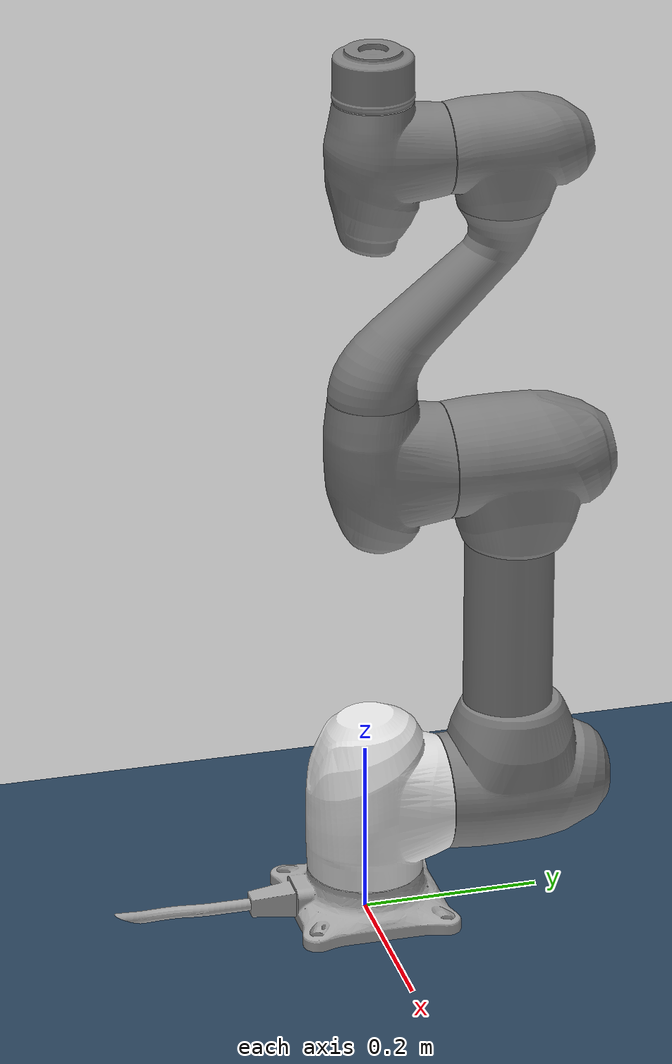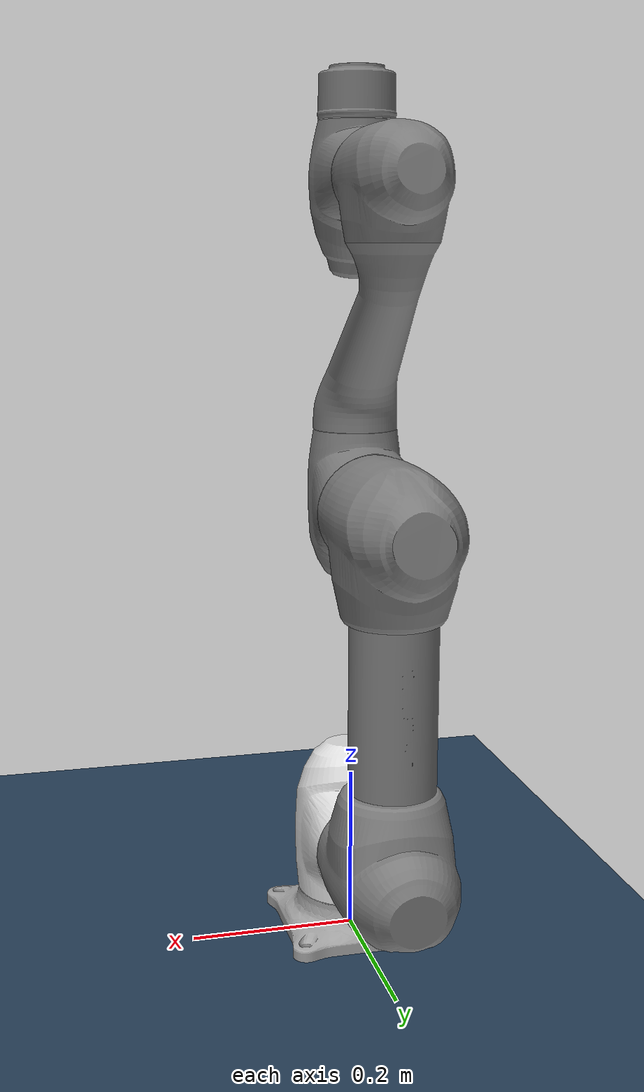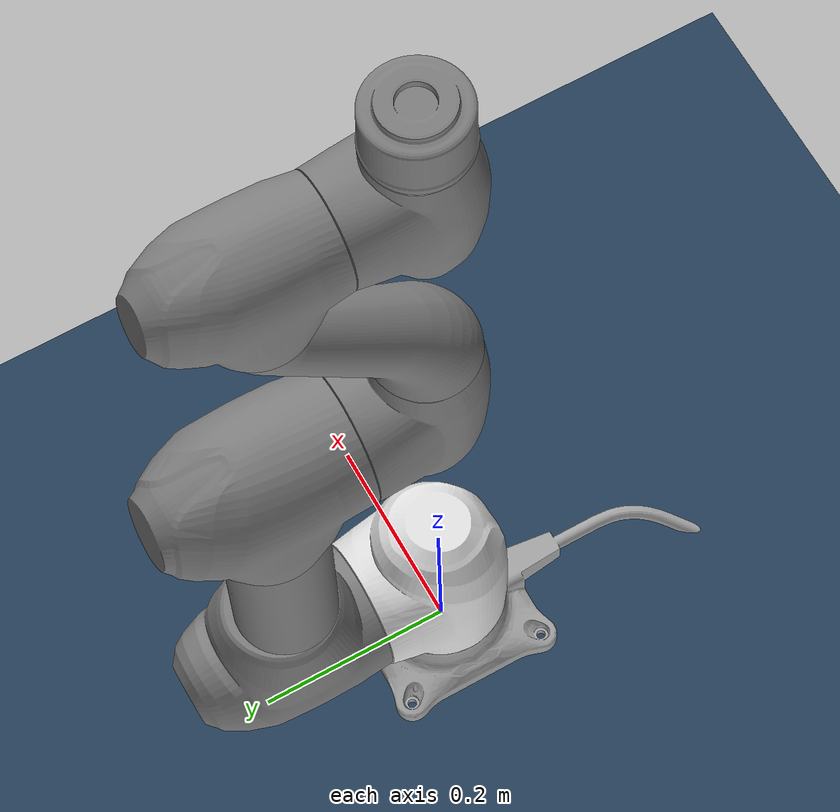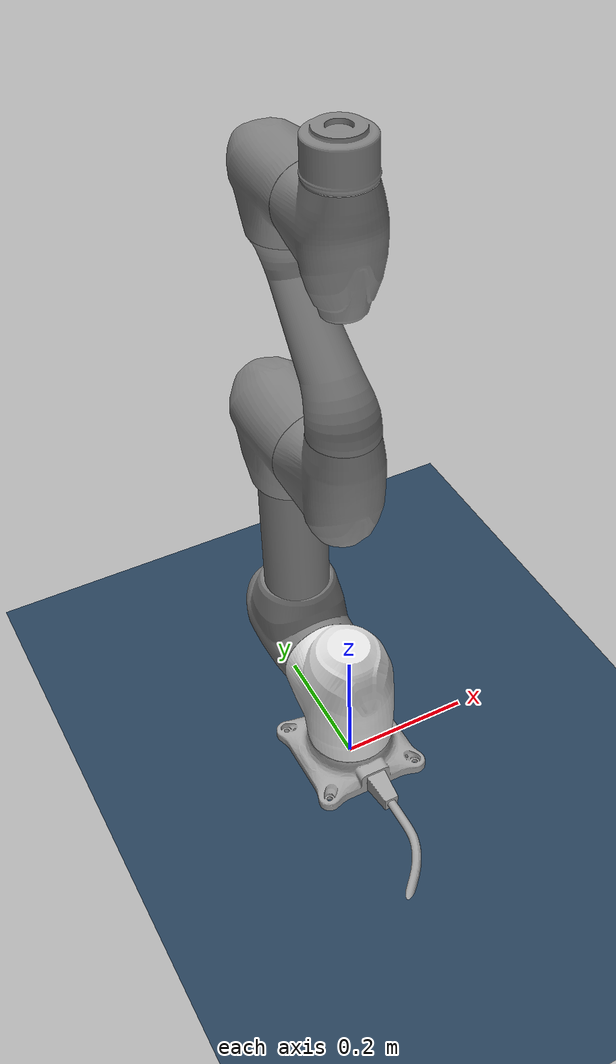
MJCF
<mujoco model="m0609 scene">
  <compiler angle="radian" meshdir="../"/>
  <include file="m0609.xml"/>

  <statistic center="0.3 0 0.4" extent="1"/>

  <visual>
    <headlight diffuse="0.6 0.6 0.6" ambient="0.3 0.3 0.3" specular="0 0 0"/>
    <rgba haze="0.15 0.25 0.35 1"/>
    <global azimuth="120" elevation="-20"/>
  </visual>

  <asset>
    <texture type="skybox" builtin="gradient" rgb1="0.3 0.5 0.7" rgb2="0 0 0" width="512" height="3072"/>
    <texture type="2d" name="groundplane" builtin="checker" mark="edge" rgb1="0.2 0.3 0.4" rgb2="0.1 0.2 0.3"
      markrgb="0.8 0.8 0.8" width="300" height="300"/>
    <material name="groundplane" texture="groundplane" texuniform="true" texrepeat="5 5" reflectance="0.2"/>
  </asset>

  <worldbody>
    <light pos="0 0 1.5" dir="0 0 -1" directional="true"/>
    <geom name="floor" size="0 0 0.05" type="plane" material="groundplane"/>
  </worldbody>
</mujoco>

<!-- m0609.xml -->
<mujoco model="m0609">

  <asset>
    <mesh name="MF0609_0_0" file="m0609/assets/MF0609_0_0.stl" scale="0.001 0.001 0.001"/>
    <mesh name="MF0609_1_0" file="m0609/assets/MF0609_1_0.stl" scale="0.001 0.001 0.001"/>
    <mesh name="MF0609_2_0" file="m0609/assets/MF0609_2_0.stl" scale="0.001 0.001 0.001"/>
    <mesh name="MF0609_2_1" file="m0609/assets/MF0609_2_1.stl" scale="0.001 0.001 0.001"/>
    <mesh name="MF0609_2_2" file="m0609/assets/MF0609_2_2.stl" scale="0.001 0.001 0.001"/>
    <mesh name="MF0609_3_0" file="m0609/assets/MF0609_3_0.stl" scale="0.001 0.001 0.001"/>
    <mesh name="MF0609_4_0" file="m0609/assets/MF0609_4_0.stl" scale="0.001 0.001 0.001"/>
    <mesh name="MF0609_4_1" file="m0609/assets/MF0609_4_1.stl" scale="0.001 0.001 0.001"/>
    <mesh name="MF0609_5_0" file="m0609/assets/MF0609_5_0.stl" scale="0.001 0.001 0.001"/>
    <mesh name="MF0609_6_0" file="m0609/assets/MF0609_6_0.stl" scale="0.001 0.001 0.001"/>

    <material name="white" rgba="0.9 0.9 0.9 1"/>
    <material name="metal" rgba="0.65 0.65 0.65 1"/>
  </asset>

  <worldbody>
    <geom type="mesh" contype="0" conaffinity="0" group="1" density="0" mesh="MF0609_0_0" material="metal"/>
    <body name="link_1" pos="0 0 0.1345">
      <inertial pos="7.2e-05 0.036227 -0.003417" quat="0.664592 0.747202 0.00267558 -0.000797025" mass="5.02" diaginertia="0.0261951 0.0230285 0.0168144"/>
      <joint name="joint_1" pos="0 0 0" axis="0 0 1" range="-6.2832 6.2832" actuatorfrcrange="-400 400" damping="400" frictionloss="1"/>
      <geom type="mesh" contype="0" conaffinity="0" group="1" density="0" mesh="MF0609_1_0" material="white"/>
      <body name="link_2" pos="0 0.0062 0" quat="0.499898 -0.500102 -0.5 -0.5">
        <inertial pos="0.20447 2.6e-05 0.16005" quat="0.501219 0.498426 0.500493 0.499858" mass="8.04" diaginertia="0.30084 0.298981 0.0267416"/>
        <joint name="joint_2" pos="0 0 0" axis="0 0 1" range="-6.2832 6.2832" actuatorfrcrange="-300 300" damping="400" frictionloss="1"/>
        <geom type="mesh" mesh="MF0609_2_0"/>
        <geom type="mesh" contype="0" conaffinity="0" group="1" density="0" mesh="MF0609_2_0" material="white"/>
        <geom type="mesh" mesh="MF0609_2_1"/>
        <geom type="mesh" contype="0" conaffinity="0" group="1" density="0" mesh="MF0609_2_1" material="metal"/>
        <geom type="mesh" mesh="MF0609_2_2"/>
        <geom type="mesh" contype="0" conaffinity="0" group="1" density="0" mesh="MF0609_2_2" material="white"/>
        <body name="link_3" pos="0.411 0 0" quat="0.707035 0 0 0.707179">
          <inertial pos="-2.2e-05 -0.006867 0.043445" quat="0.749263 -0.0711267 0.0625163 0.655468" mass="3.6" diaginertia="0.0184311 0.0183404 0.0130695"/>
          <joint name="joint_3" pos="0 0 0" axis="0 0 1" range="-2.618 2.618" actuatorfrcrange="-300 300" damping="400" frictionloss="1"/>
          <geom type="mesh" mesh="MF0609_3_0"/>
          <geom type="mesh" contype="0" conaffinity="0" group="1" density="0" mesh="MF0609_3_0" material="white"/>
          <body name="link_4" pos="0 -0.368 0" quat="0.707035 0.707179 0 0">
            <inertial pos="4e-05 0.097079 -0.10981" quat="0.684585 -0.176984 0.177087 0.684587" mass="3.57" diaginertia="0.0820767 0.08035 0.0136913"/>
            <joint name="joint_4" pos="0 0 0" axis="0 0 1" range="-6.2832 6.2832" actuatorfrcrange="-200 200" damping="400" frictionloss="1"/>
            <geom type="mesh" mesh="MF0609_4_0"/>
            <geom type="mesh" contype="0" conaffinity="0" group="1" density="0" mesh="MF0609_4_0" material="white"/>
            <geom type="mesh" mesh="MF0609_4_1"/>
            <geom type="mesh" contype="0" conaffinity="0" group="1" density="0" mesh="MF0609_4_1" material="white"/>
            <body name="link_5" quat="0.707035 -0.707179 0 0">
              <inertial pos="-6.8e-05 0.003827 0.031969" quat="0.998469 0.0548961 -0.000443461 0.00670252" mass="2.83" diaginertia="0.0142753 0.0126184 0.00848208"/>
              <joint name="joint_5" pos="0 0 0" axis="0 0 1" range="-6.2832 6.2832" actuatorfrcrange="-220 220" damping="300" frictionloss="1"/>
              <geom type="mesh" mesh="MF0609_5_0"/>
              <geom type="mesh" contype="0" conaffinity="0" group="1" density="0" mesh="MF0609_5_0" material="white"/>
              <body name="link_6" pos="0 -0.121 0" quat="0.707035 0.707179 0 0">
                <inertial pos="-3e-05 -4.5e-05 -0.0539" quat="0.963897 0.266271 -0.00109467 0.000577053" mass="1.16" diaginertia="0.00802262 0.00540366 0.00538672"/>
                <joint name="joint_6" pos="0 0 0" axis="0 0 1" range="-6.2832 6.2832" actuatorfrcrange="-50 50" damping="200" frictionloss="1"/>
                <geom type="mesh" mesh="MF0609_6_0"/>
                <geom type="mesh" contype="0" conaffinity="0" group="1" density="0" mesh="MF0609_6_0" material="metal"/>
              </body>
            </body>
          </body>
        </body>
      </body>
    </body>
  </worldbody>

    <actuator>
    <position joint="joint_1" kp="10" kv="1" ctrlrange="-6.2832 6.2832"/>
    <position joint="joint_2" kp="10" kv="1" ctrlrange="-6.2832 6.2832"/>
    <position joint="joint_3" kp="10" kv="1" ctrlrange="-2.618 2.618"/>
    <position joint="joint_4" kp="10" kv="1" ctrlrange="-6.2832 6.2832"/>
    <position joint="joint_5" kp="10" kv="1" ctrlrange="-6.2832 6.2832"/>
    <position joint="joint_6" kp="10" kv="1" ctrlrange="-6.2832 6.2832"/>
  </actuator>
</mujoco>
